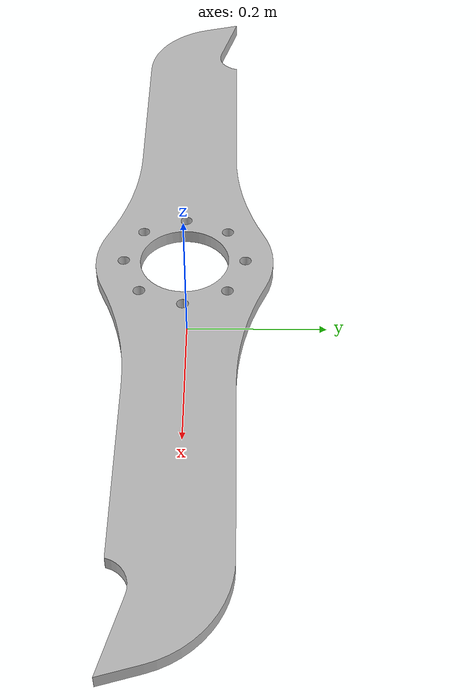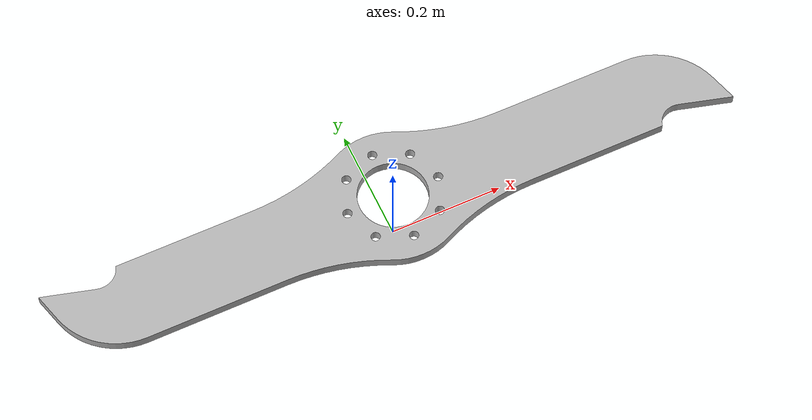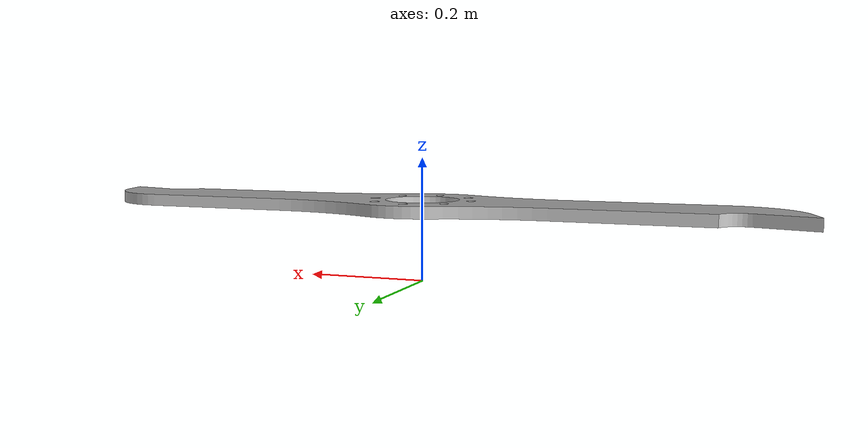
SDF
<?xml version='1.0'?>
<sdf version="1.6">
  <model name="spinner">
    <link name="spinner_link">
      <pose>0 0 0.1143 1.5708 0 0</pose>
      <inertial>
        <mass>23.5</mass>
        <inertia>
          <ixx>0.056</ixx>
          <ixy>0</ixy>
          <ixz>0</ixz>
          <iyy>2.474</iyy>
          <iyz>0</iyz>
          <izz>2.42</izz>
        </inertia>
      </inertial>
      <collision name="spinner_collision">
        <geometry>
          <mesh>
            <uri>file://meshes/BSWeapon.stl</uri>
            <scale>0.001 0.001 0.001</scale>
          </mesh>
        </geometry>
      </collision>
      <visual name="spinner_visual">
        <geometry>
          <mesh>
            <uri>file://meshes/BSWeapon.stl</uri>
            <scale>0.001 0.001 0.001</scale>
          </mesh>
        </geometry>
      </visual>
      <sensor name='spinner_imu' type='imu'>
      </sensor>
    </link>
  </model>
</sdf>
